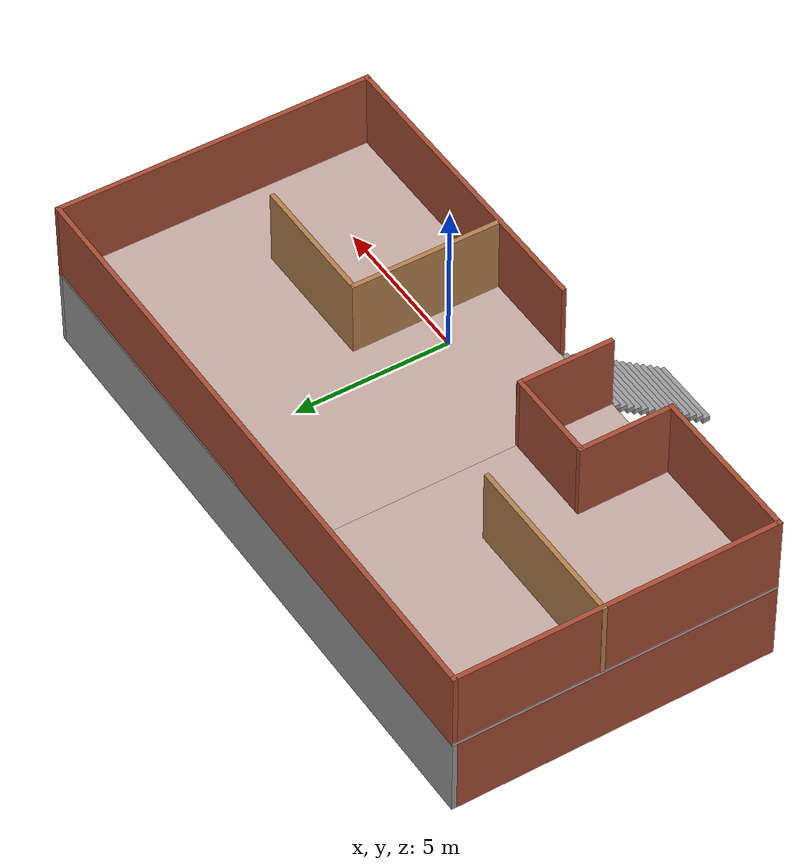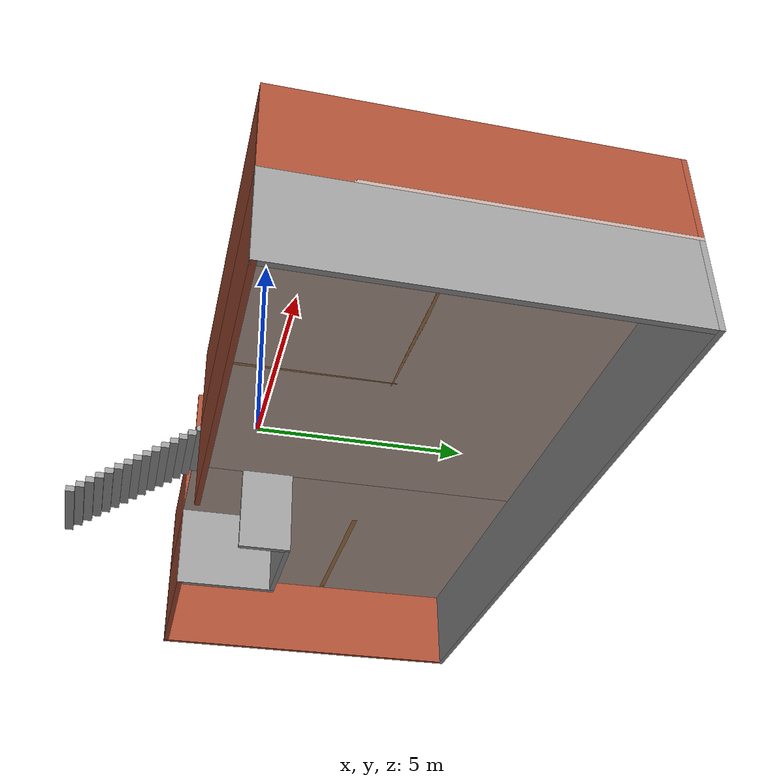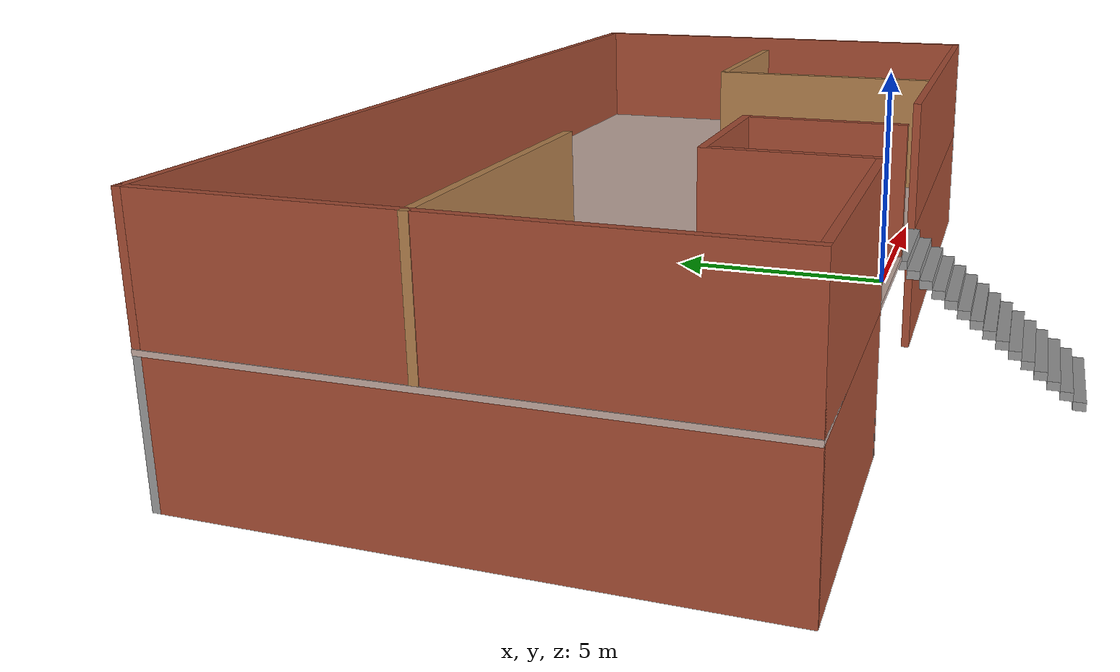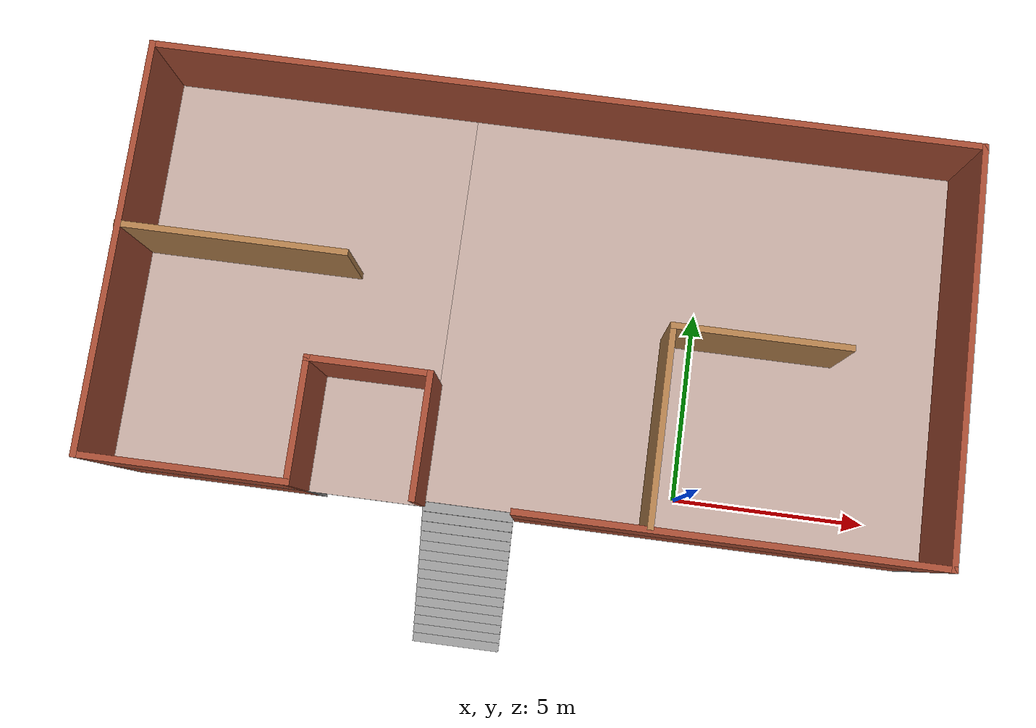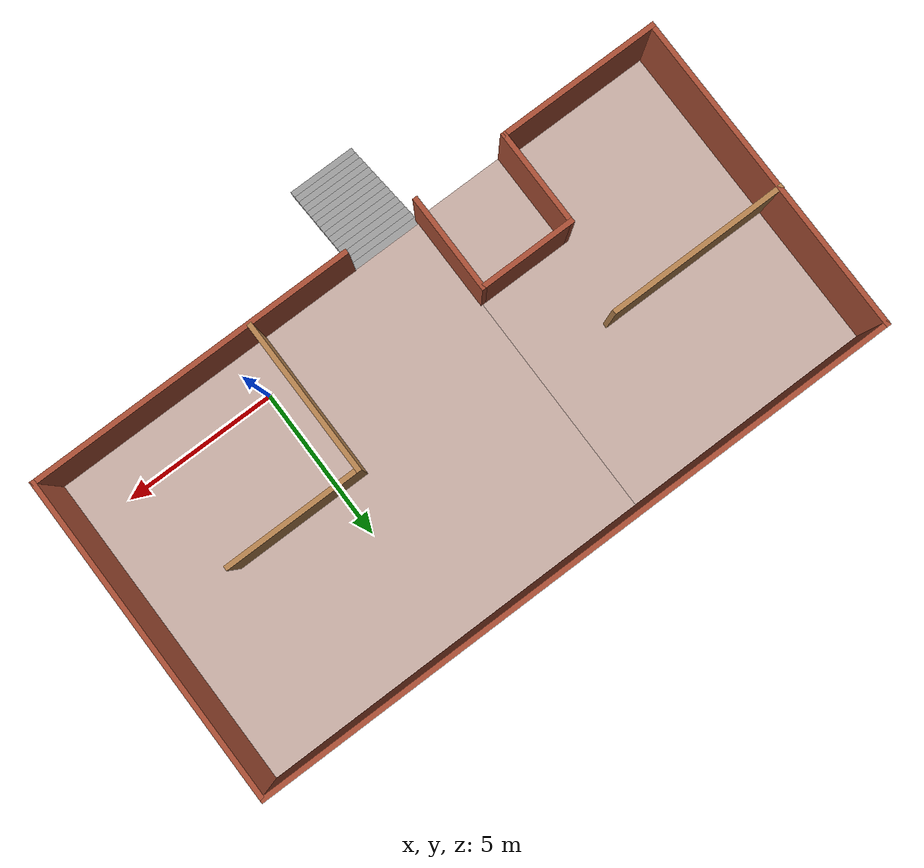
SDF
<?xml version='1.0'?>
<sdf version='1.7'>
  <model name='two_storeys'>
    <pose>-4.09184 2.23076 0 0 -0 0</pose>
    <link name='Floor_0'>
      <pose>-0 1.68424 2.5 0 -0 0</pose>
      <visual name='Floor_0_Visual_0'>
        <pose>-6.10424 0 0.05 0 -0 0</pose>
        <geometry>
          <box>
            <size>7.8052 10 0.1</size>
          </box>
        </geometry>
        <material>
          <script>
            <uri>file://media/materials/scripts/gazebo.material</uri>
            <name>Gazebo/Grey</name>
          </script>
          <ambient>0.760784 0.662745 0.627451 1</ambient>
        </material>
        <meta>
          <layer>1</layer>
        </meta>
      </visual>
      <collision name='Floor_0_Collision_0'>
        <geometry>
          <box>
            <size>7.8052 10 0.1</size>
          </box>
        </geometry>
        <pose>-6.10424 0 0.05 0 -0 0</pose>
      </collision>
      <visual name='Floor_0_Visual_1'>
        <pose>3.9026 0.065763 0.05 0 -0 0</pose>
        <geometry>
          <box>
            <size>12.2085 9.86847 0.1</size>
          </box>
        </geometry>
        <material>
          <script>
            <uri>file://media/materials/scripts/gazebo.material</uri>
            <name>Gazebo/Grey</name>
          </script>
          <ambient>0.760784 0.662745 0.627451 1</ambient>
        </material>
        <meta>
          <layer>1</layer>
        </meta>
      </visual>
      <collision name='Floor_0_Collision_1'>
        <geometry>
          <box>
            <size>12.2085 9.86847 0.1</size>
          </box>
        </geometry>
        <pose>3.9026 0.065763 0.05 0 -0 0</pose>
      </collision>
    </link>
    <link name='Stairs_1'>
      <visual name='Stairs_1_Visual_0'>
        <pose>-1.08804 -6.56757 0.083333 0 -0 -3.14159</pose>
        <geometry>
          <box>
            <size>2.22718 0.233333 0.166667</size>
          </box>
        </geometry>
        <material>
          <script>
            <uri>file://media/materials/scripts/gazebo.material</uri>
            <name>Gazebo/Grey</name>
          </script>
          <ambient>1 1 1 1</ambient>
        </material>
        <meta>
          <layer>0</layer>
        </meta>
      </visual>
      <collision name='Stairs_1_Collision_0'>
        <geometry>
          <box>
            <size>2.22718 0.233333 0.166667</size>
          </box>
        </geometry>
        <pose>-1.08804 -6.56757 0.083333 0 -0 -3.14159</pose>
      </collision>
      <visual name='Stairs_1_Visual_1'>
        <pose>-1.08804 -6.33424 0.25 0 -0 -3.14159</pose>
        <geometry>
          <box>
            <size>2.22718 0.233333 0.166667</size>
          </box>
        </geometry>
        <material>
          <script>
            <uri>file://media/materials/scripts/gazebo.material</uri>
            <name>Gazebo/Grey</name>
          </script>
          <ambient>1 1 1 1</ambient>
        </material>
        <meta>
          <layer>0</layer>
        </meta>
      </visual>
      <collision name='Stairs_1_Collision_1'>
        <geometry>
          <box>
            <size>2.22718 0.233333 0.166667</size>
          </box>
        </geometry>
        <pose>-1.08804 -6.33424 0.25 0 -0 -3.14159</pose>
      </collision>
      <visual name='Stairs_1_Visual_2'>
        <pose>-1.08804 -6.1009 0.416667 0 -0 -3.14159</pose>
        <geometry>
          <box>
            <size>2.22718 0.233333 0.166667</size>
          </box>
        </geometry>
        <material>
          <script>
            <uri>file://media/materials/scripts/gazebo.material</uri>
            <name>Gazebo/Grey</name>
          </script>
          <ambient>1 1 1 1</ambient>
        </material>
        <meta>
          <layer>0</layer>
        </meta>
      </visual>
      <collision name='Stairs_1_Collision_2'>
        <geometry>
          <box>
            <size>2.22718 0.233333 0.166667</size>
          </box>
        </geometry>
        <pose>-1.08804 -6.1009 0.416667 0 -0 -3.14159</pose>
      </collision>
      <visual name='Stairs_1_Visual_3'>
        <pose>-1.08804 -5.86757 0.583333 0 -0 -3.14159</pose>
        <geometry>
          <box>
            <size>2.22718 0.233333 0.166667</size>
          </box>
        </geometry>
        <material>
          <script>
            <uri>file://media/materials/scripts/gazebo.material</uri>
            <name>Gazebo/Grey</name>
          </script>
          <ambient>1 1 1 1</ambient>
        </material>
        <meta>
          <layer>0</layer>
        </meta>
      </visual>
      <collision name='Stairs_1_Collision_3'>
        <geometry>
          <box>
            <size>2.22718 0.233333 0.166667</size>
          </box>
        </geometry>
        <pose>-1.08804 -5.86757 0.583333 0 -0 -3.14159</pose>
      </collision>
      <visual name='Stairs_1_Visual_4'>
        <pose>-1.08804 -5.63424 0.75 0 -0 -3.14159</pose>
        <geometry>
          <box>
            <size>2.22718 0.233333 0.166667</size>
          </box>
        </geometry>
        <material>
          <script>
            <uri>file://media/materials/scripts/gazebo.material</uri>
            <name>Gazebo/Grey</name>
          </script>
          <ambient>1 1 1 1</ambient>
        </material>
        <meta>
          <layer>0</layer>
        </meta>
      </visual>
      <collision name='Stairs_1_Collision_4'>
        <geometry>
          <box>
            <size>2.22718 0.233333 0.166667</size>
          </box>
        </geometry>
        <pose>-1.08804 -5.63424 0.75 0 -0 -3.14159</pose>
      </collision>
      <visual name='Stairs_1_Visual_5'>
        <pose>-1.08804 -5.4009 0.916667 0 -0 -3.14159</pose>
        <geometry>
          <box>
            <size>2.22718 0.233333 0.166667</size>
          </box>
        </geometry>
        <material>
          <script>
            <uri>file://media/materials/scripts/gazebo.material</uri>
            <name>Gazebo/Grey</name>
          </script>
          <ambient>1 1 1 1</ambient>
        </material>
        <meta>
          <layer>0</layer>
        </meta>
      </visual>
      <collision name='Stairs_1_Collision_5'>
        <geometry>
          <box>
            <size>2.22718 0.233333 0.166667</size>
          </box>
        </geometry>
        <pose>-1.08804 -5.4009 0.916667 0 -0 -3.14159</pose>
      </collision>
      <visual name='Stairs_1_Visual_6'>
        <pose>-1.08804 -5.16757 1.08333 0 -0 -3.14159</pose>
        <geometry>
          <box>
            <size>2.22718 0.233333 0.166667</size>
          </box>
        </geometry>
        <material>
          <script>
            <uri>file://media/materials/scripts/gazebo.material</uri>
            <name>Gazebo/Grey</name>
          </script>
          <ambient>1 1 1 1</ambient>
        </material>
        <meta>
          <layer>0</layer>
        </meta>
      </visual>
      <collision name='Stairs_1_Collision_6'>
        <geometry>
          <box>
            <size>2.22718 0.233333 0.166667</size>
          </box>
        </geometry>
        <pose>-1.08804 -5.16757 1.08333 0 -0 -3.14159</pose>
      </collision>
      <visual name='Stairs_1_Visual_7'>
        <pose>-1.08804 -4.93424 1.25 0 -0 -3.14159</pose>
        <geometry>
          <box>
            <size>2.22718 0.233333 0.166667</size>
          </box>
        </geometry>
        <material>
          <script>
            <uri>file://media/materials/scripts/gazebo.material</uri>
            <name>Gazebo/Grey</name>
          </script>
          <ambient>1 1 1 1</ambient>
        </material>
        <meta>
          <layer>0</layer>
        </meta>
      </visual>
      <collision name='Stairs_1_Collision_7'>
        <geometry>
          <box>
            <size>2.22718 0.233333 0.166667</size>
          </box>
        </geometry>
        <pose>-1.08804 -4.93424 1.25 0 -0 -3.14159</pose>
      </collision>
      <visual name='Stairs_1_Visual_8'>
        <pose>-1.08804 -4.7009 1.41667 0 -0 -3.14159</pose>
        <geometry>
          <box>
            <size>2.22718 0.233333 0.166667</size>
          </box>
        </geometry>
        <material>
          <script>
            <uri>file://media/materials/scripts/gazebo.material</uri>
            <name>Gazebo/Grey</name>
          </script>
          <ambient>1 1 1 1</ambient>
        </material>
        <meta>
          <layer>0</layer>
        </meta>
      </visual>
      <collision name='Stairs_1_Collision_8'>
        <geometry>
          <box>
            <size>2.22718 0.233333 0.166667</size>
          </box>
        </geometry>
        <pose>-1.08804 -4.7009 1.41667 0 -0 -3.14159</pose>
      </collision>
      <visual name='Stairs_1_Visual_9'>
        <pose>-1.08804 -4.46757 1.58333 0 -0 -3.14159</pose>
        <geometry>
          <box>
            <size>2.22718 0.233333 0.166667</size>
          </box>
        </geometry>
        <material>
          <script>
            <uri>file://media/materials/scripts/gazebo.material</uri>
            <name>Gazebo/Grey</name>
          </script>
          <ambient>1 1 1 1</ambient>
        </material>
        <meta>
          <layer>0</layer>
        </meta>
      </visual>
      <collision name='Stairs_1_Collision_9'>
        <geometry>
          <box>
            <size>2.22718 0.233333 0.166667</size>
          </box>
        </geometry>
        <pose>-1.08804 -4.46757 1.58333 0 -0 -3.14159</pose>
      </collision>
      <visual name='Stairs_1_Visual_10'>
        <pose>-1.08804 -4.23424 1.75 0 -0 -3.14159</pose>
        <geometry>
          <box>
            <size>2.22718 0.233333 0.166667</size>
          </box>
        </geometry>
        <material>
          <script>
            <uri>file://media/materials/scripts/gazebo.material</uri>
            <name>Gazebo/Grey</name>
          </script>
          <ambient>1 1 1 1</ambient>
        </material>
        <meta>
          <layer>0</layer>
        </meta>
      </visual>
      <collision name='Stairs_1_Collision_10'>
        <geometry>
          <box>
            <size>2.22718 0.233333 0.166667</size>
          </box>
        </geometry>
        <pose>-1.08804 -4.23424 1.75 0 -0 -3.14159</pose>
      </collision>
      <visual name='Stairs_1_Visual_11'>
        <pose>-1.08804 -4.0009 1.91667 0 -0 -3.14159</pose>
        <geometry>
          <box>
            <size>2.22718 0.233333 0.166667</size>
          </box>
        </geometry>
        <material>
          <script>
            <uri>file://media/materials/scripts/gazebo.material</uri>
            <name>Gazebo/Grey</name>
          </script>
          <ambient>1 1 1 1</ambient>
        </material>
        <meta>
          <layer>0</layer>
        </meta>
      </visual>
      <collision name='Stairs_1_Collision_11'>
        <geometry>
          <box>
            <size>2.22718 0.233333 0.166667</size>
          </box>
        </geometry>
        <pose>-1.08804 -4.0009 1.91667 0 -0 -3.14159</pose>
      </collision>
      <visual name='Stairs_1_Visual_12'>
        <pose>-1.08804 -3.76757 2.08333 0 -0 -3.14159</pose>
        <geometry>
          <box>
            <size>2.22718 0.233333 0.166667</size>
          </box>
        </geometry>
        <material>
          <script>
            <uri>file://media/materials/scripts/gazebo.material</uri>
            <name>Gazebo/Grey</name>
          </script>
          <ambient>1 1 1 1</ambient>
        </material>
        <meta>
          <layer>0</layer>
        </meta>
      </visual>
      <collision name='Stairs_1_Collision_12'>
        <geometry>
          <box>
            <size>2.22718 0.233333 0.166667</size>
          </box>
        </geometry>
        <pose>-1.08804 -3.76757 2.08333 0 -0 -3.14159</pose>
      </collision>
      <visual name='Stairs_1_Visual_13'>
        <pose>-1.08804 -3.53424 2.25 0 -0 -3.14159</pose>
        <geometry>
          <box>
            <size>2.22718 0.233333 0.166667</size>
          </box>
        </geometry>
        <material>
          <script>
            <uri>file://media/materials/scripts/gazebo.material</uri>
            <name>Gazebo/Grey</name>
          </script>
          <ambient>1 1 1 1</ambient>
        </material>
        <meta>
          <layer>0</layer>
        </meta>
      </visual>
      <collision name='Stairs_1_Collision_13'>
        <geometry>
          <box>
            <size>2.22718 0.233333 0.166667</size>
          </box>
        </geometry>
        <pose>-1.08804 -3.53424 2.25 0 -0 -3.14159</pose>
      </collision>
      <visual name='Stairs_1_Visual_14'>
        <pose>-1.08804 -3.3009 2.41667 0 -0 -3.14159</pose>
        <geometry>
          <box>
            <size>2.22718 0.233333 0.166667</size>
          </box>
        </geometry>
        <material>
          <script>
            <uri>file://media/materials/scripts/gazebo.material</uri>
            <name>Gazebo/Grey</name>
          </script>
          <ambient>1 1 1 1</ambient>
        </material>
        <meta>
          <layer>0</layer>
        </meta>
      </visual>
      <collision name='Stairs_1_Collision_14'>
        <geometry>
          <box>
            <size>2.22718 0.233333 0.166667</size>
          </box>
        </geometry>
        <pose>-1.08804 -3.3009 2.41667 0 -0 -3.14159</pose>
      </collision>
    </link>
    <link name='Wall_0'>
      <collision name='Wall_0_Collision'>
        <geometry>
          <box>
            <size>10 0.15 2.5</size>
          </box>
        </geometry>
        <pose>0 0 1.25 0 -0 0</pose>
      </collision>
      <visual name='Wall_0_Visual'>
        <pose>0 0 1.25 0 -0 0</pose>
        <geometry>
          <box>
            <size>10 0.15 2.5</size>
          </box>
        </geometry>
        <material>
          <script>
            <uri>file://media/materials/scripts/gazebo.material</uri>
            <name>Gazebo/Bricks</name>
          </script>
          <ambient>1 1 1 1</ambient>
        </material>
        <meta>
          <layer>0</layer>
        </meta>
      </visual>
      <pose>5.00684 -3.24076 0 0 -0 0</pose>
    </link>
    <link name='Wall_1'>
      <collision name='Wall_1_Collision'>
        <geometry>
          <box>
            <size>10 0.15 2.5</size>
          </box>
        </geometry>
        <pose>0 0 1.25 0 -0 0</pose>
      </collision>
      <visual name='Wall_1_Visual'>
        <pose>0 0 1.25 0 -0 0</pose>
        <geometry>
          <box>
            <size>10 0.15 2.5</size>
          </box>
        </geometry>
        <material>
          <script>
            <uri>file://media/materials/scripts/gazebo.material</uri>
            <name>Gazebo/Grey</name>
          </script>
          <ambient>1 1 1 1</ambient>
        </material>
        <meta>
          <layer>0</layer>
        </meta>
      </visual>
      <pose>9.93184 1.68424 0 0 -0 1.5708</pose>
    </link>
    <link name='Wall_10'>
      <collision name='Wall_10_Collision'>
        <geometry>
          <box>
            <size>10 0.15 2.5</size>
          </box>
        </geometry>
        <pose>0 0 1.25 0 -0 0</pose>
      </collision>
      <visual name='Wall_10_Visual'>
        <pose>0 0 1.25 0 -0 0</pose>
        <geometry>
          <box>
            <size>10 0.15 2.5</size>
          </box>
        </geometry>
        <material>
          <script>
            <uri>file://media/materials/scripts/gazebo.material</uri>
            <name>Gazebo/Bricks</name>
          </script>
          <ambient>1 1 1 1</ambient>
        </material>
        <meta>
          <layer>1</layer>
        </meta>
      </visual>
      <pose>9.93184 1.68424 2.5 0 -0 1.5708</pose>
    </link>
    <link name='Wall_11'>
      <collision name='Wall_11_Collision'>
        <geometry>
          <box>
            <size>20 0.15 2.5</size>
          </box>
        </geometry>
        <pose>0 0 1.25 0 -0 0</pose>
      </collision>
      <visual name='Wall_11_Visual'>
        <pose>0 0 1.25 0 -0 0</pose>
        <geometry>
          <box>
            <size>20 0.15 2.5</size>
          </box>
        </geometry>
        <material>
          <script>
            <uri>file://media/materials/scripts/gazebo.material</uri>
            <name>Gazebo/Bricks</name>
          </script>
          <ambient>1 1 1 1</ambient>
        </material>
        <meta>
          <layer>1</layer>
        </meta>
      </visual>
      <pose>0.006837 6.60924 2.5 0 -0 3.14159</pose>
    </link>
    <link name='Wall_12'>
      <collision name='Wall_12_Collision'>
        <geometry>
          <box>
            <size>10 0.15 2.5</size>
          </box>
        </geometry>
        <pose>0 0 1.25 0 -0 0</pose>
      </collision>
      <visual name='Wall_12_Visual'>
        <pose>0 0 1.25 0 -0 0</pose>
        <geometry>
          <box>
            <size>10 0.15 2.5</size>
          </box>
        </geometry>
        <material>
          <script>
            <uri>file://media/materials/scripts/gazebo.material</uri>
            <name>Gazebo/Bricks</name>
          </script>
          <ambient>1 1 1 1</ambient>
        </material>
        <meta>
          <layer>1</layer>
        </meta>
      </visual>
      <pose>-9.91816 1.68424 2.5 0 -0 -1.5708</pose>
    </link>
    <link name='Wall_13'>
      <collision name='Wall_13_Collision'>
        <geometry>
          <box>
            <size>5 0.15 2.5</size>
          </box>
        </geometry>
        <pose>0 0 1.25 0 -0 0</pose>
      </collision>
      <visual name='Wall_13_Visual'>
        <pose>0 0 1.25 0 -0 0</pose>
        <geometry>
          <box>
            <size>5 0.15 2.5</size>
          </box>
        </geometry>
        <material>
          <script>
            <uri>file://media/materials/scripts/gazebo.material</uri>
            <name>Gazebo/Bricks</name>
          </script>
          <ambient>1 1 1 1</ambient>
        </material>
        <meta>
          <layer>1</layer>
        </meta>
      </visual>
      <pose>-7.49316 -3.24076 2.5 0 -0 0</pose>
    </link>
    <link name='Wall_14'>
      <collision name='Wall_14_Collision'>
        <geometry>
          <box>
            <size>3 0.15 2.5</size>
          </box>
        </geometry>
        <pose>0 0 1.25 0 -0 0</pose>
      </collision>
      <visual name='Wall_14_Visual'>
        <pose>0 0 1.25 0 -0 0</pose>
        <geometry>
          <box>
            <size>3 0.15 2.5</size>
          </box>
        </geometry>
        <material>
          <script>
            <uri>file://media/materials/scripts/gazebo.material</uri>
            <name>Gazebo/Bricks</name>
          </script>
          <ambient>1 1 1 1</ambient>
        </material>
        <meta>
          <layer>1</layer>
        </meta>
      </visual>
      <pose>-5.06816 -1.81576 2.5 0 -0 1.5708</pose>
    </link>
    <link name='Wall_15'>
      <collision name='Wall_15_Collision'>
        <geometry>
          <box>
            <size>3 0.15 2.5</size>
          </box>
        </geometry>
        <pose>0 0 1.25 0 -0 0</pose>
      </collision>
      <visual name='Wall_15_Visual'>
        <pose>0 0 1.25 0 -0 0</pose>
        <geometry>
          <box>
            <size>3 0.15 2.5</size>
          </box>
        </geometry>
        <material>
          <script>
            <uri>file://media/materials/scripts/gazebo.material</uri>
            <name>Gazebo/Bricks</name>
          </script>
          <ambient>1 1 1 1</ambient>
        </material>
        <meta>
          <layer>1</layer>
        </meta>
      </visual>
      <pose>-3.64316 -0.390763 2.5 0 -0 0</pose>
    </link>
    <link name='Wall_16'>
      <collision name='Wall_16_Collision'>
        <geometry>
          <box>
            <size>3 0.15 2.5</size>
          </box>
        </geometry>
        <pose>0 0 1.25 0 -0 0</pose>
      </collision>
      <visual name='Wall_16_Visual'>
        <pose>0 0 1.25 0 -0 0</pose>
        <geometry>
          <box>
            <size>3 0.15 2.5</size>
          </box>
        </geometry>
        <material>
          <script>
            <uri>file://media/materials/scripts/gazebo.material</uri>
            <name>Gazebo/Bricks</name>
          </script>
          <ambient>1 1 1 1</ambient>
        </material>
        <meta>
          <layer>1</layer>
        </meta>
      </visual>
      <pose>-2.21816 -1.81576 2.5 0 -0 -1.5708</pose>
    </link>
    <link name='Wall_17'>
      <collision name='Wall_17_Collision'>
        <geometry>
          <box>
            <size>4.75 0.15 2.5</size>
          </box>
        </geometry>
        <pose>0 0 1.25 0 -0 0</pose>
      </collision>
      <visual name='Wall_17_Visual'>
        <pose>0 0 1.25 0 -0 0</pose>
        <geometry>
          <box>
            <size>4.75 0.15 2.5</size>
          </box>
        </geometry>
        <material>
          <script>
            <uri>file://media/materials/scripts/gazebo.material</uri>
            <name>Gazebo/Wood</name>
          </script>
          <ambient>1 1 1 1</ambient>
        </material>
        <meta>
          <layer>1</layer>
        </meta>
      </visual>
      <pose>3.14479 -0.867915 2.5 0 -0 1.5708</pose>
    </link>
    <link name='Wall_18'>
      <collision name='Wall_18_Collision'>
        <geometry>
          <box>
            <size>4.25 0.15 2.5</size>
          </box>
        </geometry>
        <pose>0 0 1.25 0 -0 0</pose>
      </collision>
      <visual name='Wall_18_Visual'>
        <pose>0 0 1.25 0 -0 0</pose>
        <geometry>
          <box>
            <size>4.25 0.15 2.5</size>
          </box>
        </geometry>
        <material>
          <script>
            <uri>file://media/materials/scripts/gazebo.material</uri>
            <name>Gazebo/Wood</name>
          </script>
          <ambient>1 1 1 1</ambient>
        </material>
        <meta>
          <layer>1</layer>
        </meta>
      </visual>
      <pose>5.19479 1.43209 2.5 0 -0 0</pose>
    </link>
    <link name='Wall_2'>
      <collision name='Wall_2_Collision'>
        <geometry>
          <box>
            <size>20 0.15 2.5</size>
          </box>
        </geometry>
        <pose>0 0 1.25 0 -0 0</pose>
      </collision>
      <visual name='Wall_2_Visual'>
        <pose>0 0 1.25 0 -0 0</pose>
        <geometry>
          <box>
            <size>20 0.15 2.5</size>
          </box>
        </geometry>
        <material>
          <script>
            <uri>file://media/materials/scripts/gazebo.material</uri>
            <name>Gazebo/Grey</name>
          </script>
          <ambient>1 1 1 1</ambient>
        </material>
        <meta>
          <layer>0</layer>
        </meta>
      </visual>
      <pose>0.006837 6.60924 0 0 -0 3.14159</pose>
    </link>
    <link name='Wall_21'>
      <collision name='Wall_21_Collision'>
        <geometry>
          <box>
            <size>5.5 0.15 2.5</size>
          </box>
        </geometry>
        <pose>0 0 1.25 0 -0 0</pose>
      </collision>
      <visual name='Wall_21_Visual'>
        <pose>0 0 1.25 0 -0 0</pose>
        <geometry>
          <box>
            <size>5.5 0.15 2.5</size>
          </box>
        </geometry>
        <material>
          <script>
            <uri>file://media/materials/scripts/gazebo.material</uri>
            <name>Gazebo/Wood</name>
          </script>
          <ambient>1 1 1 1</ambient>
        </material>
        <meta>
          <layer>1</layer>
        </meta>
      </visual>
      <pose>-7.25684 2.15768 2.5 0 -0 0</pose>
    </link>
    <link name='Wall_3'>
      <collision name='Wall_3_Collision'>
        <geometry>
          <box>
            <size>10 0.15 2.5</size>
          </box>
        </geometry>
        <pose>0 0 1.25 0 -0 0</pose>
      </collision>
      <visual name='Wall_3_Visual'>
        <pose>0 0 1.25 0 -0 0</pose>
        <geometry>
          <box>
            <size>10 0.15 2.5</size>
          </box>
        </geometry>
        <material>
          <script>
            <uri>file://media/materials/scripts/gazebo.material</uri>
            <name>Gazebo/Bricks</name>
          </script>
          <ambient>1 1 1 1</ambient>
        </material>
        <meta>
          <layer>0</layer>
        </meta>
      </visual>
      <pose>-9.91816 1.68424 0 0 -0 -1.5708</pose>
    </link>
    <link name='Wall_4'>
      <collision name='Wall_4_Collision'>
        <geometry>
          <box>
            <size>5 0.15 2.5</size>
          </box>
        </geometry>
        <pose>0 0 1.25 0 -0 0</pose>
      </collision>
      <visual name='Wall_4_Visual'>
        <pose>0 0 1.25 0 -0 0</pose>
        <geometry>
          <box>
            <size>5 0.15 2.5</size>
          </box>
        </geometry>
        <material>
          <script>
            <uri>file://media/materials/scripts/gazebo.material</uri>
            <name>Gazebo/Bricks</name>
          </script>
          <ambient>1 1 1 1</ambient>
        </material>
        <meta>
          <layer>0</layer>
        </meta>
      </visual>
      <pose>-7.49316 -3.24076 0 0 -0 0</pose>
    </link>
    <link name='Wall_5'>
      <collision name='Wall_5_Collision'>
        <geometry>
          <box>
            <size>3 0.15 2.5</size>
          </box>
        </geometry>
        <pose>0 0 1.25 0 -0 0</pose>
      </collision>
      <visual name='Wall_5_Visual'>
        <pose>0 0 1.25 0 -0 0</pose>
        <geometry>
          <box>
            <size>3 0.15 2.5</size>
          </box>
        </geometry>
        <material>
          <script>
            <uri>file://media/materials/scripts/gazebo.material</uri>
            <name>Gazebo/Grey</name>
          </script>
          <ambient>1 1 1 1</ambient>
        </material>
        <meta>
          <layer>0</layer>
        </meta>
      </visual>
      <pose>-5.06816 -1.81576 0 0 -0 1.5708</pose>
    </link>
    <link name='Wall_6'>
      <collision name='Wall_6_Collision'>
        <geometry>
          <box>
            <size>3 0.15 2.5</size>
          </box>
        </geometry>
        <pose>0 0 1.25 0 -0 0</pose>
      </collision>
      <visual name='Wall_6_Visual'>
        <pose>0 0 1.25 0 -0 0</pose>
        <geometry>
          <box>
            <size>3 0.15 2.5</size>
          </box>
        </geometry>
        <material>
          <script>
            <uri>file://media/materials/scripts/gazebo.material</uri>
            <name>Gazebo/Grey</name>
          </script>
          <ambient>1 1 1 1</ambient>
        </material>
        <meta>
          <layer>0</layer>
        </meta>
      </visual>
      <pose>-3.64316 -0.390763 0 0 -0 0</pose>
    </link>
    <link name='Wall_7'>
      <collision name='Wall_7_Collision'>
        <geometry>
          <box>
            <size>1.5 0.15 2.5</size>
          </box>
        </geometry>
        <pose>0 0 1.25 0 -0 0</pose>
      </collision>
      <visual name='Wall_7_Visual'>
        <pose>0 0 1.25 0 -0 0</pose>
        <geometry>
          <box>
            <size>1.5 0.15 2.5</size>
          </box>
        </geometry>
        <material>
          <script>
            <uri>file://media/materials/scripts/gazebo.material</uri>
            <name>Gazebo/Grey</name>
          </script>
          <ambient>1 1 1 1</ambient>
        </material>
        <meta>
          <layer>0</layer>
        </meta>
      </visual>
      <pose>-2.21816 -1.06576 0 0 -0 -1.5708</pose>
    </link>
    <link name='Wall_9'>
      <collision name='Wall_9_Collision'>
        <geometry>
          <box>
            <size>10 0.15 2.5</size>
          </box>
        </geometry>
        <pose>0 0 1.25 0 -0 0</pose>
      </collision>
      <visual name='Wall_9_Visual'>
        <pose>0 0 1.25 0 -0 0</pose>
        <geometry>
          <box>
            <size>10 0.15 2.5</size>
          </box>
        </geometry>
        <material>
          <script>
            <uri>file://media/materials/scripts/gazebo.material</uri>
            <name>Gazebo/Bricks</name>
          </script>
          <ambient>1 1 1 1</ambient>
        </material>
        <meta>
          <layer>1</layer>
        </meta>
      </visual>
      <pose>5.00684 -3.24076 2.5 0 -0 0</pose>
    </link>
    <static>1</static>
  </model>
</sdf>
